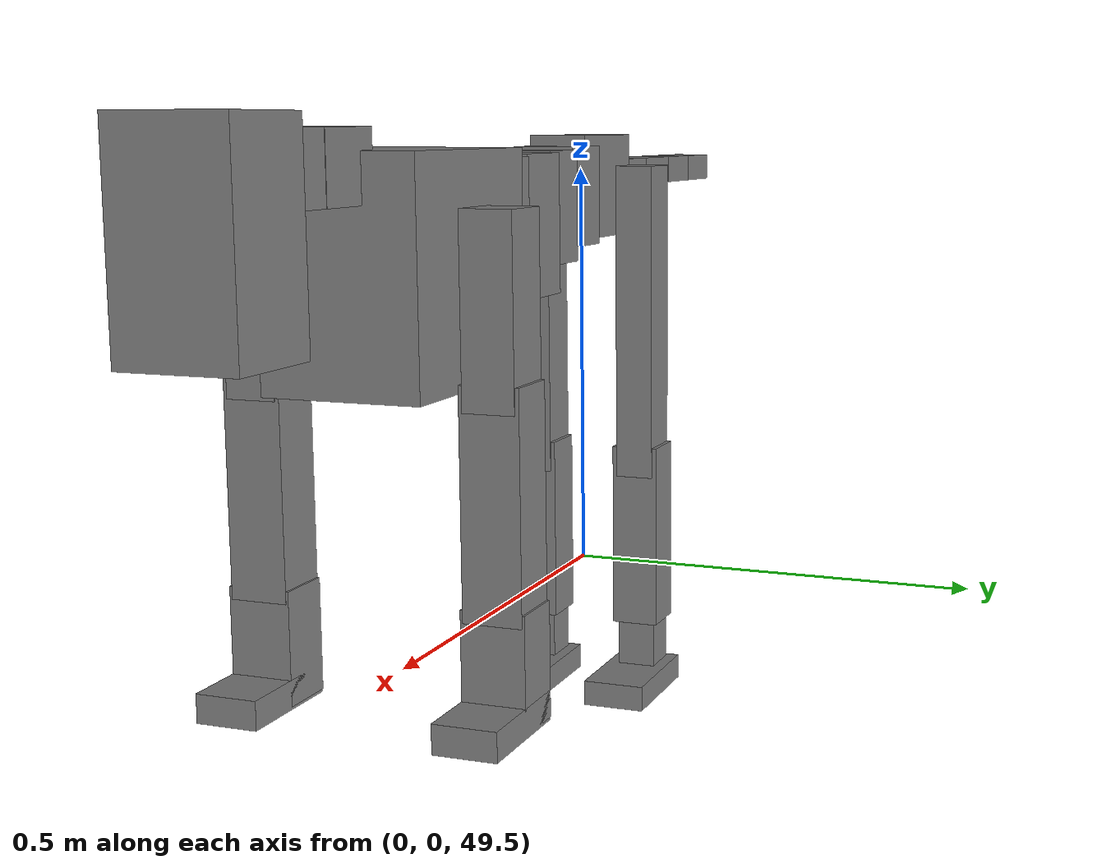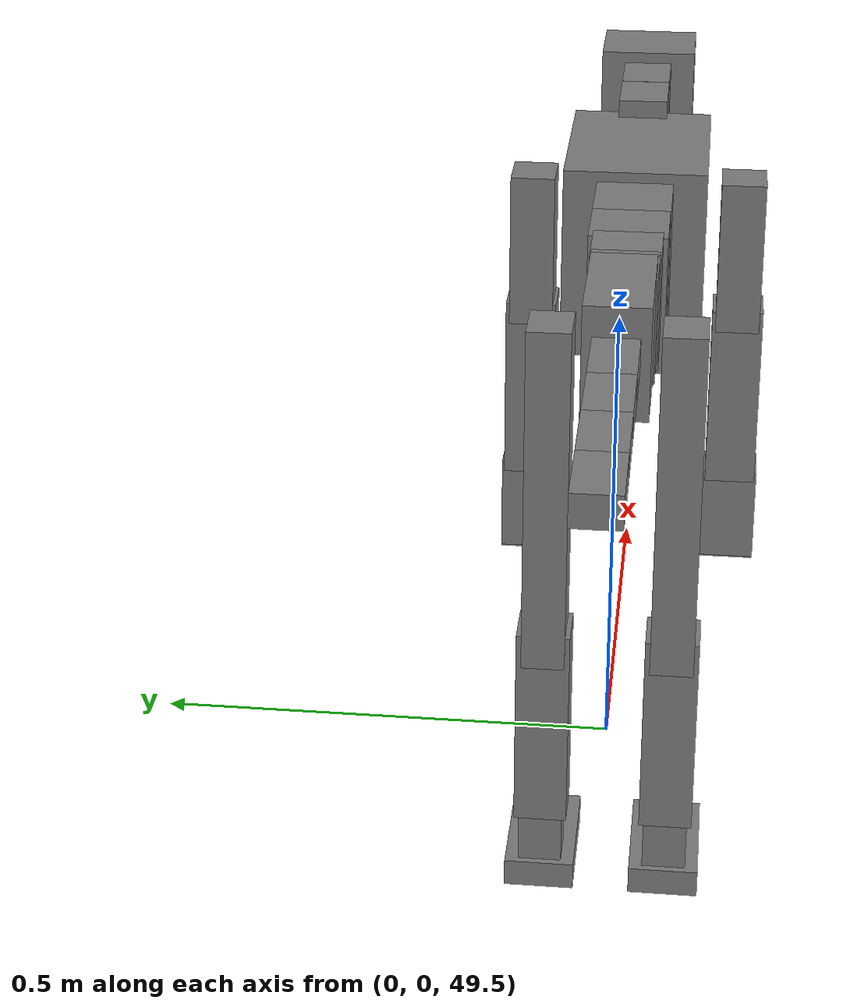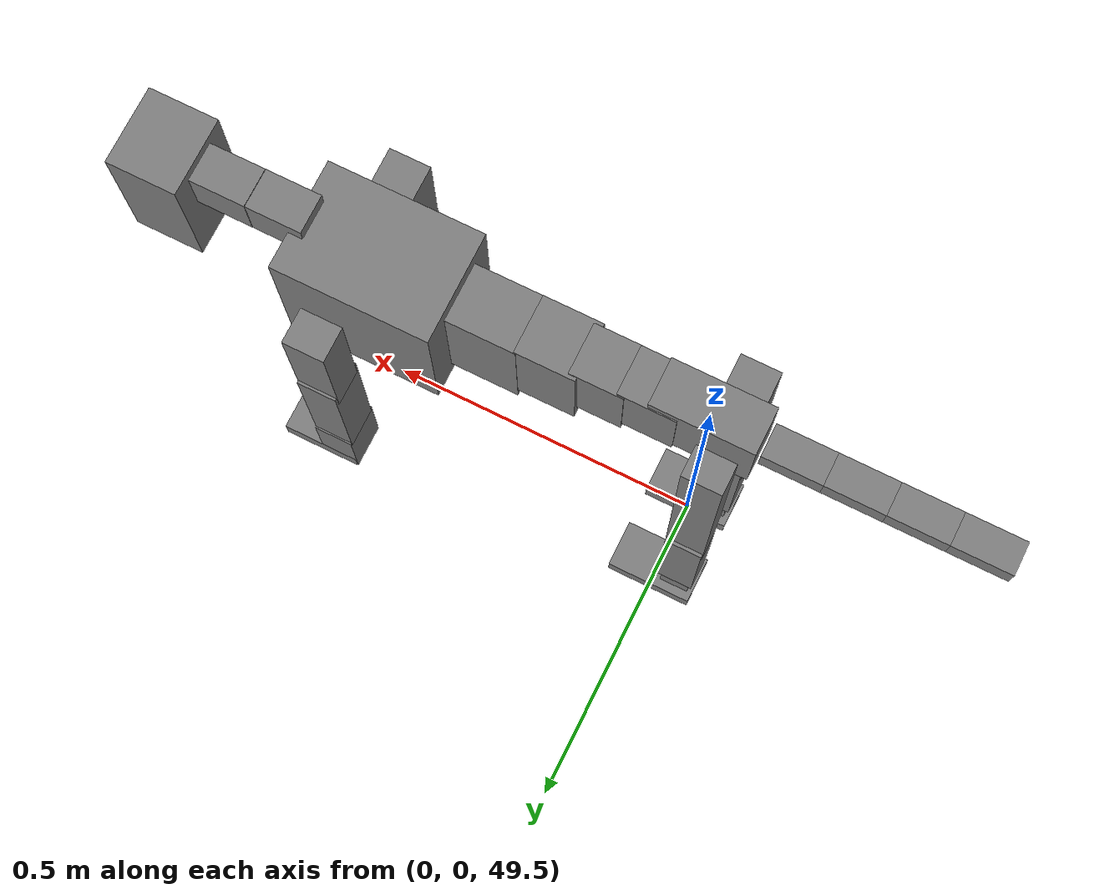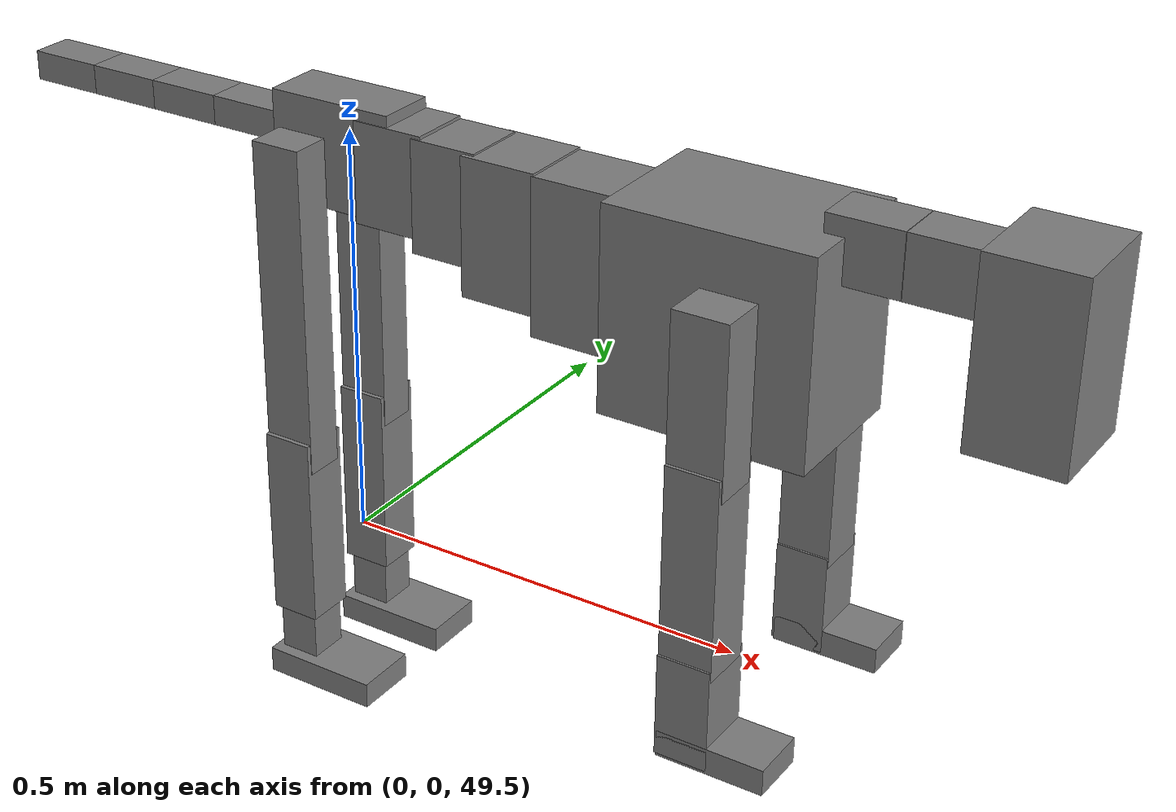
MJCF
<mujoco model="dog">

    <default>
        <joint armature="0.02" stiffness="1" damping="0.2" limited="true"/>
        <geom condim="3" friction="1 0.05 0.05" margin="0.01"/>
        <motor ctrllimited="true" ctrlrange="-1.0 1.0" forcelimited="true" gear="50"/>
    </default>

    <compiler inertiafromgeom="true" angle="radian"/>

    <option timestep="0.016" iterations="50" tolerance="1e-10" solver="Newton" jacobian="dense" cone="pyramidal"/>

    <size nconmax="20000" njmax="60000" nstack="5000000"/>
    <visual>
        <map force="0.1" zfar="30"/>
        <rgba haze="0.15 0.25 0.35 1"/>
        <quality shadowsize="2048"/>
        <global offwidth="800" offheight="800"/>
    </visual>

    <asset>
        <texture type="skybox" builtin="gradient" rgb1="0.3 0.5 0.7" rgb2="0 0 0" width="512" height="512"/>
        <texture name="texplane" type="2d" builtin="checker" rgb1=".2 .3 .4" rgb2=".1 0.15 0.2" width="512" height="512"
                 mark="cross" markrgb=".8 .8 .8"/>
        <texture name="texgeom" type="cube" builtin="flat" mark="cross" width="127" height="1278" rgb1="0.8 0.6 0.4"
                 rgb2="0.8 0.6 0.4" markrgb="1 1 1" random="0.01"/>

        <material name="matplane" reflectance="0.3" texture="texplane" texrepeat="1 1" texuniform="true"/>
        <material name="matgeom" texture="texgeom" texuniform="true" rgba="0.8 0.6 .4 1"/>
    </asset>

    <worldbody>
        <geom name="floor" pos="0 0 0" size="0 0 .25" type="plane" material="matplane" condim="3"/>

        <light directional="false" diffuse=".2 .2 .2" specular="0 0 0" pos="0 0 5" dir="0 0 -1" castshadow="false"/>
        <light mode="targetbodycom" target="torso" directional="false" diffuse=".8 .8 .8" specular="0.3 0.3 0.3"
               pos="0 0 4.0" dir="0 0 -1"/>

        <body name="root" pos="0 0 50">
            <freejoint name="root_1"/>
            <geom type="box" pos="0 0 -0.02" size="0.0774  0.0358  0.063" density="2030"/>

            <body name="spine1" pos="0.054 0 0">
                <joint name="spine1_y" axis="0 1 0" range="0 0.7" limited="true"/>
                <geom type="box" pos="0.02375 0 -0.03" size="0.04375  0.0375  0.05985" density="2030"/>

                <body name="spine2" pos="0.0612 0 0">
                    <joint name="spine2_y" axis="0 1 0" range="-0.15 0.15" limited="true"/>
                    <geom type="box" pos="0.03555  0  -0.04" size="0.04055  0.039  0.06615" density="2030"/>

                    <body name="spine3" pos="0.0730 0 0">
                        <joint name="spine3_y" axis="0 1 0" range="-0.15 0.15" limited="true"/>
                        <geom type="box" pos="0.03555  0  -0.057" size="0.04555  0.0445  0.081" density="2030"/>

                        <body name="spine4" pos="0.0780 0 0">
                            <joint name="spine4_y" axis="0 1 0" range="-0.15 0.15" limited="true"/>
                            <geom type="box" pos="0.05265  0  -0.07" size="0.05265  0.045  0.09135" density="2030"/>

                            <body name="torso" pos="0.1082 0 0">
                                <joint name="torso_y" axis="0 1 0" range="-0.15 0.15" limited="true"/>
                                <geom type="box" pos="0.11925  0  -0.085" size="0.11925  0.085  0.11745"
                                      density="2030"/>

                                <body name="neck1" pos="0.2160  0   0.0180">
                                    <joint name="neck1_y" axis="0 1 0" range="-1.2  -1" limited="true"/>
                                    <geom type="box" pos="0.0423  0  0" size="0.0423  0.03  0.036" density="2325"/>

                                    <body name="neck2" pos="0.0853  0  0">
                                        <joint name="neck2_y" axis="0 1 0" range="0.1  0" limited="true"/>
                                        <geom type="box" pos="0.0423  0  0" size="0.0423  0.03  0.036" density="2325"/>

                                        <body name="head" pos="0.0853  0  0">
                                            <joint name="head_y" axis="0 1 0" range="-0.3  -0.2" limited="true"/>
                                            <geom type="box" pos="0.0531  0  -0.055" size="0.0531  0.06  0.1044"
                                                  density="4030"/>

                                        </body>
                                    </body>
                                </body>

                                <body name="front_shoulder" pos="0.156  0   -0.0480">
                                    <joint name="front_shoulder_y" axis="0 1 0" range="-1 1.5" limited="true"/>
                                    <geom type="box" pos="0 0.13 -0.0704" size="0.0320  0.0274  0.0970" density="1158"/>
                                    <geom type="box" pos="0 -0.13 -0.0704" size="0.0320  0.0274  0.0970"
                                          density="1158"/>

                                    <body name="front_elbow" pos="0  0  -0.1407">
                                        <joint name="front_elbow_y" axis="0 1 0" range="-2 0" limited="true"/>
                                        <geom type="box" pos="0 0.13 -0.1172" size="0.0308  0.0315  0.1172"
                                              density="1081"/>
                                        <geom type="box" pos="0 -0.13 -0.1172" size="0.0308  0.0315  0.1172"
                                              density="1081"/>

                                        <body name="front_wrist" pos="0  0  -0.2344">
                                            <joint name="front_wrist_y" axis="0 1 0" range="-0.2 0" limited="true"/>
                                            <geom type="box" pos="0 0.13 -0.0473" size="0.0307  0.0341  0.0605"
                                                  density="1664"/>
                                            <geom type="box" pos="0 -0.13 -0.0473" size="0.0307  0.0341  0.0605"
                                                  density="1664"/>

                                            <body name="front_finger_end" pos="0  0  -0.0947">
                                                <joint name="front_finger_y" axis="0 1 0" range="-0.4 1"
                                                       limited="true"/>
                                                <geom type="box" pos="0.0341  0.13  -0.0004"
                                                      size="0.0626  0.0341  0.0154" density="1515"/>
                                                <geom type="box" pos="0.0341  -0.13  -0.0004"
                                                      size="0.0626  0.0341  0.0154" density="1515"/>

                                            </body>

                                        </body>
                                    </body>
                                </body>

                            </body>
                        </body>
                    </body>
                </body>
            </body>

            <body name="back_hip" pos="-0.03 0 -0.018">
                <joint name="back_hip_y" axis="0 1 0" range="-1.5 0.3" limited="true"/>
                <geom type="box" pos="0 0.07 -0.1751" size="0.0304  0.0238  0.1979" density="1154"/>
                <geom type="box" pos="0 -0.07 -0.1751" size="0.0304  0.0238  0.1979" density="1154"/>

                <body name="back_knee" pos="0  0  -0.3501">
                    <joint name="back_knee_y" axis="0 1 0" range="0 2.8" limited="true"/>
                    <geom type="box" pos="0 0.07 -0.1008" size="0.0297  0.0293  0.1163" density="1227"/>
                    <geom type="box" pos="0 -0.07 -0.1008" size="0.0297  0.0293  0.1163" density="1227"/>

                    <body name="back_ankle" pos="0  0  -0.2015">
                        <joint name="back_ankle_y" axis="0 1 0" range="-2.2 0" limited="true"/>
                        <geom type="box" pos="0 0.07 -0.0438" size="0.0242  0.0242  0.0551" density="1284"/>
                        <geom type="box" pos="0 -0.07 -0.0438" size="0.0242  0.0242  0.0551" density="1284"/>

                        <body name="back_toe_end" pos="0  0  -0.0877">
                            <joint name="back_toe_y" axis="0 1 0" range="-0.4 1" limited="true"/>
                            <geom type="box" pos="0.0387  0.07  -0.0006" size="0.0709  0.0387  0.0156" density="1515"/>
                            <geom type="box" pos="0.0387  -0.07  -0.0006" size="0.0709  0.0387  0.0156" density="1515"/>

                        </body>
                    </body>
                </body>
            </body>

            <body name="tail1" pos="-0.074 0 -0.006">
                <joint name="tail1_y" axis="0 1 0" range="-0.2 0.2" limited="true"/>
                <geom type="box" pos="-0.0536  0  0" size="0.045  0.025  0.0175" density="1587"/>

                <body name="tail2" pos="-0.09 0 0">
                    <joint name="tail2_y" axis="0 1 0" range="-0.2 0.2" limited="true"/>
                    <geom type="box" pos="-0.0536  0  0" size="0.045  0.025  0.0175" density="1587"/>

                    <body name="tail3" pos="-0.09 0 0">
                        <joint name="tail3_y" axis="0 1 0" range="-0.2 0.2" limited="true"/>
                        <geom type="box" pos="-0.0536  0  0" size="0.045  0.025  0.0175" density="1587"/>

                        <body name="tail4" pos="-0.09 0 0">
                            <joint name="tail4_y" axis="0 1 0" range="-0.2 0.2" limited="true"/>
                            <geom type="box" pos="-0.0536  0  0" size="0.045  0.025  0.0175" density="1587"/>

                        </body>
                    </body>
                </body>
            </body>
        </body>
    </worldbody>

    <actuator>
        <motor joint="spine1_y" forcerange="-150 150     "/>
        <motor joint="spine2_y" forcerange="-150 150     "/>
        <motor joint="spine3_y" forcerange="-150 150     "/>
        <motor joint="spine4_y" forcerange="-150 150     "/>
        <motor joint="torso_y" forcerange="-150 150     "/>
        <motor joint="neck1_y" forcerange="-100 100       "/>
        <motor joint="neck2_y" forcerange="-100 100       "/>
        <motor joint="head_y" forcerange="-150 150       "/>
        <motor joint="front_shoulder_y" forcerange="-121.40 161.07"/>
        <motor joint="front_elbow_y" forcerange="-140.24 189.01"/>
        <motor joint="front_wrist_y" forcerange="-141.71 131.34"/>
        <motor joint="front_finger_y" forcerange="-78.98 63.10"/>
        <motor joint="back_hip_y" forcerange="-291.62 226.08"/>
        <motor joint="back_knee_y" forcerange="-237.64 388.81"/>
        <motor joint="back_angle_y" forcerange="-127.25 160.19"/>
        <motor joint="back_toe_y" forcerange="-136.53 92.87"/>
        <motor joint="tail1_y" forcerange="-50 50     "/>
        <motor joint="tail2_y" forcerange="-50 50     "/>
        <motor joint="tail3_y" forcerange="-50 50     "/>
        <motor joint="tail4_y" forcerange="-50 50     "/>
    </actuator>
</mujoco>
